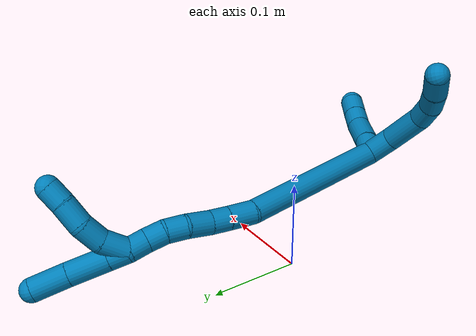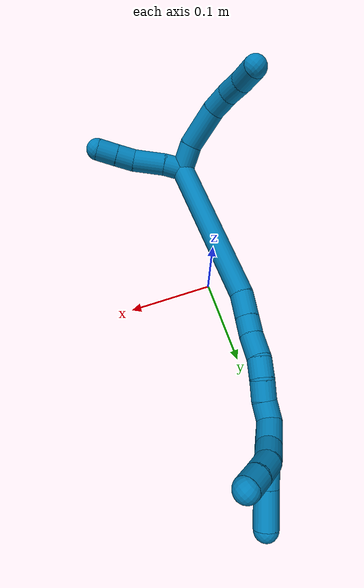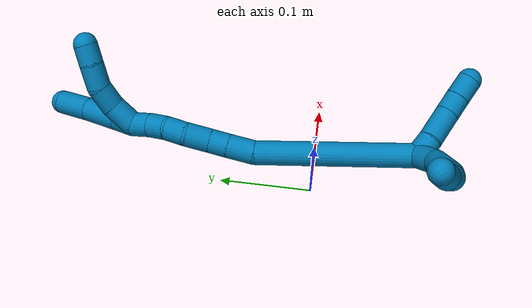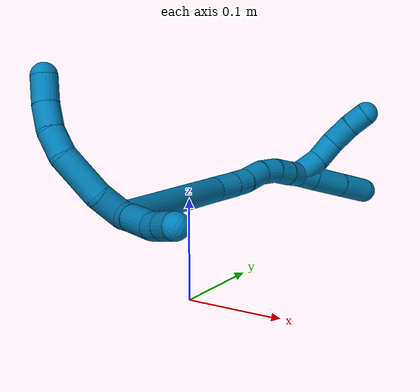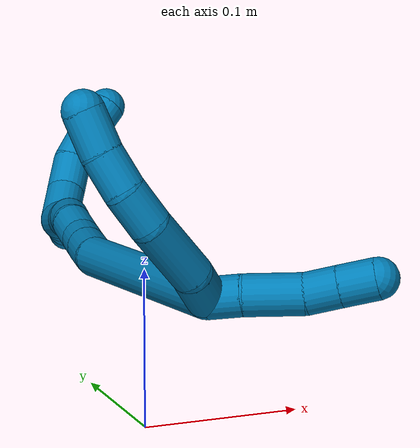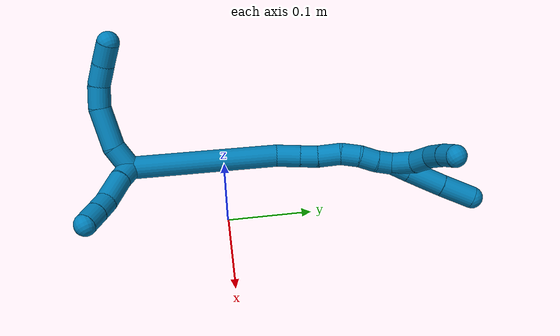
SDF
<sdf version="1.7">
 <world name="default">
  <model name="9">
   <static>0</static>
   <link name="9">
    <collision name="collision-cylinder-e_1_2_8">
     <pose>-0.004262 -0.004752 -0.013216 2.79639 -0.294632 -1.41035</pose>
     <geometry><cylinder><radius>0.0125</radius><length>0.029353</length></cylinder></geometry>
     <surface>
      <friction><ode><mu>1.16</mu><mu2>1.16</mu2><slip1>0</slip1><slip2>0</slip2></ode></friction>
      <contact><ode><kp>1e+06</kp><kd>1</kd><max_vel>0</max_vel><min_depth>0.001</min_depth></ode></contact>
     </surface>
    </collision>
    <visual name="visual-cylinder-e_1_2_8">
     <pose>-0.004262 -0.004752 -0.013216 2.79639 -0.294632 -1.41035</pose>
     <geometry><cylinder><radius>0.0125</radius><length>0.029353</length></cylinder></geometry>
     <material><ambient>0 0.490196 0.709804 1</ambient></material>
    </visual>
    <collision name="collision-cylinder-e_2_8_9">
     <pose>-0.017423 -0.009706 -0.047532 3.13203 -0.399073 -3.09433</pose>
     <geometry><cylinder><radius>0.0125</radius><length>0.045803</length></cylinder></geometry>
     <surface>
      <friction><ode><mu>1.16</mu><mu2>1.16</mu2><slip1>0</slip1><slip2>0</slip2></ode></friction>
      <contact><ode><kp>1e+06</kp><kd>1</kd><max_vel>0</max_vel><min_depth>0.001</min_depth></ode></contact>
     </surface>
    </collision>
    <visual name="visual-cylinder-e_2_8_9">
     <pose>-0.017423 -0.009706 -0.047532 3.13203 -0.399073 -3.09433</pose>
     <geometry><cylinder><radius>0.0125</radius><length>0.045803</length></cylinder></geometry>
     <material><ambient>0 0.490196 0.709804 1</ambient></material>
    </visual>
    <collision name="collision-cylinder-e_3_9_10">
     <pose>-0.033283 -0.006866 -0.078515 -2.84291 -0.592597 2.22575</pose>
     <geometry><cylinder><radius>0.0125</radius><length>0.024928</length></cylinder></geometry>
     <surface>
      <friction><ode><mu>1.16</mu><mu2>1.16</mu2><slip1>0</slip1><slip2>0</slip2></ode></friction>
      <contact><ode><kp>1e+06</kp><kd>1</kd><max_vel>0</max_vel><min_depth>0.001</min_depth></ode></contact>
     </surface>
    </collision>
    <visual name="visual-cylinder-e_3_9_10">
     <pose>-0.033283 -0.006866 -0.078515 -2.84291 -0.592597 2.22575</pose>
     <geometry><cylinder><radius>0.0125</radius><length>0.024928</length></cylinder></geometry>
     <material><ambient>0 0.490196 0.709804 1</ambient></material>
    </visual>
    <collision name="collision-cylinder-e_4_10_11">
     <pose>-0.048531 0.000829 -0.09582 -2.58178 -0.757571 1.8906</pose>
     <geometry><cylinder><radius>0.0125</radius><length>0.02412</length></cylinder></geometry>
     <surface>
      <friction><ode><mu>1.16</mu><mu2>1.16</mu2><slip1>0</slip1><slip2>0</slip2></ode></friction>
      <contact><ode><kp>1e+06</kp><kd>1</kd><max_vel>0</max_vel><min_depth>0.001</min_depth></ode></contact>
     </surface>
    </collision>
    <visual name="visual-cylinder-e_4_10_11">
     <pose>-0.048531 0.000829 -0.09582 -2.58178 -0.757571 1.8906</pose>
     <geometry><cylinder><radius>0.0125</radius><length>0.02412</length></cylinder></geometry>
     <material><ambient>0 0.490196 0.709804 1</ambient></material>
    </visual>
    <collision name="collision-cylinder-e_5_11_6">
     <pose>-0.066956 0.009862 -0.109907 -2.56006 -0.904272 2.03721</pose>
     <geometry><cylinder><radius>0.0125</radius><length>0.025795</length></cylinder></geometry>
     <surface>
      <friction><ode><mu>1.16</mu><mu2>1.16</mu2><slip1>0</slip1><slip2>0</slip2></ode></friction>
      <contact><ode><kp>1e+06</kp><kd>1</kd><max_vel>0</max_vel><min_depth>0.001</min_depth></ode></contact>
     </surface>
    </collision>
    <visual name="visual-cylinder-e_5_11_6">
     <pose>-0.066956 0.009862 -0.109907 -2.56006 -0.904272 2.03721</pose>
     <geometry><cylinder><radius>0.0125</radius><length>0.025795</length></cylinder></geometry>
     <material><ambient>0 0.490196 0.709804 1</ambient></material>
    </visual>
    <collision name="collision-cylinder-e_1_2_12">
     <pose>-0.003061 -0.008826 0.00501 1.05453 -0.292889 -0.171344</pose>
     <geometry><cylinder><radius>0.0125</radius><length>0.021201</length></cylinder></geometry>
     <surface>
      <friction><ode><mu>1.16</mu><mu2>1.16</mu2><slip1>0</slip1><slip2>0</slip2></ode></friction>
      <contact><ode><kp>1e+06</kp><kd>1</kd><max_vel>0</max_vel><min_depth>0.001</min_depth></ode></contact>
     </surface>
    </collision>
    <visual name="visual-cylinder-e_1_2_12">
     <pose>-0.003061 -0.008826 0.00501 1.05453 -0.292889 -0.171344</pose>
     <geometry><cylinder><radius>0.0125</radius><length>0.021201</length></cylinder></geometry>
     <material><ambient>0 0.490196 0.709804 1</ambient></material>
    </visual>
    <collision name="collision-cylinder-e_2_12_13">
     <pose>-0.010484 -0.031495 0.020463 0.924479 -0.246515 -0.123293</pose>
     <geometry><cylinder><radius>0.0125</radius><length>0.035761</length></cylinder></geometry>
     <surface>
      <friction><ode><mu>1.16</mu><mu2>1.16</mu2><slip1>0</slip1><slip2>0</slip2></ode></friction>
      <contact><ode><kp>1e+06</kp><kd>1</kd><max_vel>0</max_vel><min_depth>0.001</min_depth></ode></contact>
     </surface>
    </collision>
    <visual name="visual-cylinder-e_2_12_13">
     <pose>-0.010484 -0.031495 0.020463 0.924479 -0.246515 -0.123293</pose>
     <geometry><cylinder><radius>0.0125</radius><length>0.035761</length></cylinder></geometry>
     <material><ambient>0 0.490196 0.709804 1</ambient></material>
    </visual>
    <collision name="collision-cylinder-e_3_13_14">
     <pose>-0.019071 -0.053425 0.035613 1.04367 -0.423952 -0.246239</pose>
     <geometry><cylinder><radius>0.0125</radius><length>0.020533</length></cylinder></geometry>
     <surface>
      <friction><ode><mu>1.16</mu><mu2>1.16</mu2><slip1>0</slip1><slip2>0</slip2></ode></friction>
      <contact><ode><kp>1e+06</kp><kd>1</kd><max_vel>0</max_vel><min_depth>0.001</min_depth></ode></contact>
     </surface>
    </collision>
    <visual name="visual-cylinder-e_3_13_14">
     <pose>-0.019071 -0.053425 0.035613 1.04367 -0.423952 -0.246239</pose>
     <geometry><cylinder><radius>0.0125</radius><length>0.020533</length></cylinder></geometry>
     <material><ambient>0 0.490196 0.709804 1</ambient></material>
    </visual>
    <collision name="collision-cylinder-e_4_14_5">
     <pose>-0.027804 -0.070515 0.045345 1.06177 -0.412357 -0.244363</pose>
     <geometry><cylinder><radius>0.0125</radius><length>0.022505</length></cylinder></geometry>
     <surface>
      <friction><ode><mu>1.16</mu><mu2>1.16</mu2><slip1>0</slip1><slip2>0</slip2></ode></friction>
      <contact><ode><kp>1e+06</kp><kd>1</kd><max_vel>0</max_vel><min_depth>0.001</min_depth></ode></contact>
     </surface>
    </collision>
    <visual name="visual-cylinder-e_4_14_5">
     <pose>-0.027804 -0.070515 0.045345 1.06177 -0.412357 -0.244363</pose>
     <geometry><cylinder><radius>0.0125</radius><length>0.022505</length></cylinder></geometry>
     <material><ambient>0 0.490196 0.709804 1</ambient></material>
    </visual>
    <collision name="collision-cylinder-e_1_2_15">
     <pose>-0.011987 0.076904 0.026761 -1.23592 -0.146157 0.103985</pose>
     <geometry><cylinder><radius>0.0125</radius><length>0.164609</length></cylinder></geometry>
     <surface>
      <friction><ode><mu>1.16</mu><mu2>1.16</mu2><slip1>0</slip1><slip2>0</slip2></ode></friction>
      <contact><ode><kp>1e+06</kp><kd>1</kd><max_vel>0</max_vel><min_depth>0.001</min_depth></ode></contact>
     </surface>
    </collision>
    <visual name="visual-cylinder-e_1_2_15">
     <pose>-0.011987 0.076904 0.026761 -1.23592 -0.146157 0.103985</pose>
     <geometry><cylinder><radius>0.0125</radius><length>0.164609</length></cylinder></geometry>
     <material><ambient>0 0.490196 0.709804 1</ambient></material>
    </visual>
    <collision name="collision-cylinder-e_2_15_16">
     <pose>-0.02802 0.165324 0.060151 -1.04852 -0.295631 0.171776</pose>
     <geometry><cylinder><radius>0.0125</radius><length>0.027781</length></cylinder></geometry>
     <surface>
      <friction><ode><mu>1.16</mu><mu2>1.16</mu2><slip1>0</slip1><slip2>0</slip2></ode></friction>
      <contact><ode><kp>1e+06</kp><kd>1</kd><max_vel>0</max_vel><min_depth>0.001</min_depth></ode></contact>
     </surface>
    </collision>
    <visual name="visual-cylinder-e_2_15_16">
     <pose>-0.02802 0.165324 0.060151 -1.04852 -0.295631 0.171776</pose>
     <geometry><cylinder><radius>0.0125</radius><length>0.027781</length></cylinder></geometry>
     <material><ambient>0 0.490196 0.709804 1</ambient></material>
    </visual>
    <collision name="collision-cylinder-e_3_16_17">
     <pose>-0.035223 0.185111 0.071521 -1.05034 -0.319664 0.186281</pose>
     <geometry><cylinder><radius>0.0125</radius><length>0.020085</length></cylinder></geometry>
     <surface>
      <friction><ode><mu>1.16</mu><mu2>1.16</mu2><slip1>0</slip1><slip2>0</slip2></ode></friction>
      <contact><ode><kp>1e+06</kp><kd>1</kd><max_vel>0</max_vel><min_depth>0.001</min_depth></ode></contact>
     </surface>
    </collision>
    <visual name="visual-cylinder-e_3_16_17">
     <pose>-0.035223 0.185111 0.071521 -1.05034 -0.319664 0.186281</pose>
     <geometry><cylinder><radius>0.0125</radius><length>0.020085</length></cylinder></geometry>
     <material><ambient>0 0.490196 0.709804 1</ambient></material>
    </visual>
    <collision name="collision-cylinder-e_4_17_18">
     <pose>-0.043585 0.20434 0.080944 -1.16692 -0.411943 0.274118</pose>
     <geometry><cylinder><radius>0.0125</radius><length>0.026007</length></cylinder></geometry>
     <surface>
      <friction><ode><mu>1.16</mu><mu2>1.16</mu2><slip1>0</slip1><slip2>0</slip2></ode></friction>
      <contact><ode><kp>1e+06</kp><kd>1</kd><max_vel>0</max_vel><min_depth>0.001</min_depth></ode></contact>
     </surface>
    </collision>
    <visual name="visual-cylinder-e_4_17_18">
     <pose>-0.043585 0.20434 0.080944 -1.16692 -0.411943 0.274118</pose>
     <geometry><cylinder><radius>0.0125</radius><length>0.026007</length></cylinder></geometry>
     <material><ambient>0 0.490196 0.709804 1</ambient></material>
    </visual>
    <collision name="collision-cylinder-e_5_18_19">
     <pose>-0.051671 0.223634 0.091619 -0.947594 -0.27345 0.140859</pose>
     <geometry><cylinder><radius>0.0125</radius><length>0.021327</length></cylinder></geometry>
     <surface>
      <friction><ode><mu>1.16</mu><mu2>1.16</mu2><slip1>0</slip1><slip2>0</slip2></ode></friction>
      <contact><ode><kp>1e+06</kp><kd>1</kd><max_vel>0</max_vel><min_depth>0.001</min_depth></ode></contact>
     </surface>
    </collision>
    <visual name="visual-cylinder-e_5_18_19">
     <pose>-0.051671 0.223634 0.091619 -0.947594 -0.27345 0.140859</pose>
     <geometry><cylinder><radius>0.0125</radius><length>0.021327</length></cylinder></geometry>
     <material><ambient>0 0.490196 0.709804 1</ambient></material>
    </visual>
    <collision name="collision-cylinder-e_6_19_20">
     <pose>-0.05491 0.239643 0.104049 -0.872756 -0.03582 0.016707</pose>
     <geometry><cylinder><radius>0.0125</radius><length>0.020043</length></cylinder></geometry>
     <surface>
      <friction><ode><mu>1.16</mu><mu2>1.16</mu2><slip1>0</slip1><slip2>0</slip2></ode></friction>
      <contact><ode><kp>1e+06</kp><kd>1</kd><max_vel>0</max_vel><min_depth>0.001</min_depth></ode></contact>
     </surface>
    </collision>
    <visual name="visual-cylinder-e_6_19_20">
     <pose>-0.05491 0.239643 0.104049 -0.872756 -0.03582 0.016707</pose>
     <geometry><cylinder><radius>0.0125</radius><length>0.020043</length></cylinder></geometry>
     <material><ambient>0 0.490196 0.709804 1</ambient></material>
    </visual>
    <collision name="collision-cylinder-e_7_20_1">
     <pose>-0.055592 0.255996 0.11559 -1.03919 -0.032114 0.018371</pose>
     <geometry><cylinder><radius>0.0125</radius><length>0.020149</length></cylinder></geometry>
     <surface>
      <friction><ode><mu>1.16</mu><mu2>1.16</mu2><slip1>0</slip1><slip2>0</slip2></ode></friction>
      <contact><ode><kp>1e+06</kp><kd>1</kd><max_vel>0</max_vel><min_depth>0.001</min_depth></ode></contact>
     </surface>
    </collision>
    <visual name="visual-cylinder-e_7_20_1">
     <pose>-0.055592 0.255996 0.11559 -1.03919 -0.032114 0.018371</pose>
     <geometry><cylinder><radius>0.0125</radius><length>0.020149</length></cylinder></geometry>
     <material><ambient>0 0.490196 0.709804 1</ambient></material>
    </visual>
    <collision name="collision-cylinder-e_1_1_21">
     <pose>-0.06645 0.271754 0.126839 -0.855866 -0.843618 0.403787</pose>
     <geometry><cylinder><radius>0.0125</radius><length>0.028202</length></cylinder></geometry>
     <surface>
      <friction><ode><mu>1.16</mu><mu2>1.16</mu2><slip1>0</slip1><slip2>0</slip2></ode></friction>
      <contact><ode><kp>1e+06</kp><kd>1</kd><max_vel>0</max_vel><min_depth>0.001</min_depth></ode></contact>
     </surface>
    </collision>
    <visual name="visual-cylinder-e_1_1_21">
     <pose>-0.06645 0.271754 0.126839 -0.855866 -0.843618 0.403787</pose>
     <geometry><cylinder><radius>0.0125</radius><length>0.028202</length></cylinder></geometry>
     <material><ambient>0 0.490196 0.709804 1</ambient></material>
    </visual>
    <collision name="collision-cylinder-e_2_21_22">
     <pose>-0.088546 0.282487 0.135917 -0.89459 -1.18576 0.625219</pose>
     <geometry><cylinder><radius>0.0125</radius><length>0.024951</length></cylinder></geometry>
     <surface>
      <friction><ode><mu>1.16</mu><mu2>1.16</mu2><slip1>0</slip1><slip2>0</slip2></ode></friction>
      <contact><ode><kp>1e+06</kp><kd>1</kd><max_vel>0</max_vel><min_depth>0.001</min_depth></ode></contact>
     </surface>
    </collision>
    <visual name="visual-cylinder-e_2_21_22">
     <pose>-0.088546 0.282487 0.135917 -0.89459 -1.18576 0.625219</pose>
     <geometry><cylinder><radius>0.0125</radius><length>0.024951</length></cylinder></geometry>
     <material><ambient>0 0.490196 0.709804 1</ambient></material>
    </visual>
    <collision name="collision-cylinder-e_3_22_23">
     <pose>-0.112361 0.286066 0.143235 0.017227 -1.22704 -0.012131</pose>
     <geometry><cylinder><radius>0.0125</radius><length>0.026028</length></cylinder></geometry>
     <surface>
      <friction><ode><mu>1.16</mu><mu2>1.16</mu2><slip1>0</slip1><slip2>0</slip2></ode></friction>
      <contact><ode><kp>1e+06</kp><kd>1</kd><max_vel>0</max_vel><min_depth>0.001</min_depth></ode></contact>
     </surface>
    </collision>
    <visual name="visual-cylinder-e_3_22_23">
     <pose>-0.112361 0.286066 0.143235 0.017227 -1.22704 -0.012131</pose>
     <geometry><cylinder><radius>0.0125</radius><length>0.026028</length></cylinder></geometry>
     <material><ambient>0 0.490196 0.709804 1</ambient></material>
    </visual>
    <collision name="collision-cylinder-e_4_23_4">
     <pose>-0.133962 0.285843 0.152195 0.032213 -1.11547 -0.020096</pose>
     <geometry><cylinder><radius>0.0125</radius><length>0.020819</length></cylinder></geometry>
     <surface>
      <friction><ode><mu>1.16</mu><mu2>1.16</mu2><slip1>0</slip1><slip2>0</slip2></ode></friction>
      <contact><ode><kp>1e+06</kp><kd>1</kd><max_vel>0</max_vel><min_depth>0.001</min_depth></ode></contact>
     </surface>
    </collision>
    <visual name="visual-cylinder-e_4_23_4">
     <pose>-0.133962 0.285843 0.152195 0.032213 -1.11547 -0.020096</pose>
     <geometry><cylinder><radius>0.0125</radius><length>0.020819</length></cylinder></geometry>
     <material><ambient>0 0.490196 0.709804 1</ambient></material>
    </visual>
    <collision name="collision-cylinder-e_1_1_24">
     <pose>-0.056401 0.271378 0.128442 -0.713204 -0.047324 0.017632</pose>
     <geometry><cylinder><radius>0.0125</radius><length>0.020512</length></cylinder></geometry>
     <surface>
      <friction><ode><mu>1.16</mu><mu2>1.16</mu2><slip1>0</slip1><slip2>0</slip2></ode></friction>
      <contact><ode><kp>1e+06</kp><kd>1</kd><max_vel>0</max_vel><min_depth>0.001</min_depth></ode></contact>
     </surface>
    </collision>
    <visual name="visual-cylinder-e_1_1_24">
     <pose>-0.056401 0.271378 0.128442 -0.713204 -0.047324 0.017632</pose>
     <geometry><cylinder><radius>0.0125</radius><length>0.020512</length></cylinder></geometry>
     <material><ambient>0 0.490196 0.709804 1</ambient></material>
    </visual>
    <collision name="collision-cylinder-e_2_24_25">
     <pose>-0.058063 0.292022 0.151444 -0.740471 -0.056912 0.022094</pose>
     <geometry><cylinder><radius>0.0125</radius><length>0.041398</length></cylinder></geometry>
     <surface>
      <friction><ode><mu>1.16</mu><mu2>1.16</mu2><slip1>0</slip1><slip2>0</slip2></ode></friction>
      <contact><ode><kp>1e+06</kp><kd>1</kd><max_vel>0</max_vel><min_depth>0.001</min_depth></ode></contact>
     </surface>
    </collision>
    <visual name="visual-cylinder-e_2_24_25">
     <pose>-0.058063 0.292022 0.151444 -0.740471 -0.056912 0.022094</pose>
     <geometry><cylinder><radius>0.0125</radius><length>0.041398</length></cylinder></geometry>
     <material><ambient>0 0.490196 0.709804 1</ambient></material>
    </visual>
    <collision name="collision-cylinder-e_3_25_3">
     <pose>-0.060078 0.319315 0.180254 -0.777773 -0.043998 0.018031</pose>
     <geometry><cylinder><radius>0.0125</radius><length>0.03809</length></cylinder></geometry>
     <surface>
      <friction><ode><mu>1.16</mu><mu2>1.16</mu2><slip1>0</slip1><slip2>0</slip2></ode></friction>
      <contact><ode><kp>1e+06</kp><kd>1</kd><max_vel>0</max_vel><min_depth>0.001</min_depth></ode></contact>
     </surface>
    </collision>
    <visual name="visual-cylinder-e_3_25_3">
     <pose>-0.060078 0.319315 0.180254 -0.777773 -0.043998 0.018031</pose>
     <geometry><cylinder><radius>0.0125</radius><length>0.03809</length></cylinder></geometry>
     <material><ambient>0 0.490196 0.709804 1</ambient></material>
    </visual>
    <collision name="collision-sphere-3">
     <pose>-0.060916 0.332665 0.19381 0 -0 0</pose>
     <geometry><sphere><radius>0.0125</radius></sphere></geometry>
     <surface>
      <friction><ode><mu>1.16</mu><mu2>1.16</mu2><slip1>0</slip1><slip2>0</slip2></ode></friction>
      <contact><ode><kp>1e+06</kp><kd>1</kd><max_vel>0</max_vel><min_depth>0.001</min_depth></ode></contact>
     </surface>
    </collision>
    <visual name="visual-sphere-3">
     <pose>-0.060916 0.332665 0.19381 0 -0 0</pose>
     <geometry><sphere><radius>0.0125</radius></sphere></geometry>
     <material><ambient>0 0.490196 0.709804 1</ambient></material>
    </visual>
    <collision name="collision-sphere-25">
     <pose>-0.059241 0.305964 0.166698 0 -0 0</pose>
     <geometry><sphere><radius>0.0125</radius></sphere></geometry>
     <surface>
      <friction><ode><mu>1.16</mu><mu2>1.16</mu2><slip1>0</slip1><slip2>0</slip2></ode></friction>
      <contact><ode><kp>1e+06</kp><kd>1</kd><max_vel>0</max_vel><min_depth>0.001</min_depth></ode></contact>
     </surface>
    </collision>
    <visual name="visual-sphere-25">
     <pose>-0.059241 0.305964 0.166698 0 -0 0</pose>
     <geometry><sphere><radius>0.0125</radius></sphere></geometry>
     <material><ambient>0 0.490196 0.709804 1</ambient></material>
    </visual>
    <collision name="collision-sphere-24">
     <pose>-0.056886 0.27808 0.136189 0 -0 0</pose>
     <geometry><sphere><radius>0.0125</radius></sphere></geometry>
     <surface>
      <friction><ode><mu>1.16</mu><mu2>1.16</mu2><slip1>0</slip1><slip2>0</slip2></ode></friction>
      <contact><ode><kp>1e+06</kp><kd>1</kd><max_vel>0</max_vel><min_depth>0.001</min_depth></ode></contact>
     </surface>
    </collision>
    <visual name="visual-sphere-24">
     <pose>-0.056886 0.27808 0.136189 0 -0 0</pose>
     <geometry><sphere><radius>0.0125</radius></sphere></geometry>
     <material><ambient>0 0.490196 0.709804 1</ambient></material>
    </visual>
    <collision name="collision-sphere-4">
     <pose>-0.143311 0.285695 0.156771 0 -0 0</pose>
     <geometry><sphere><radius>0.0125</radius></sphere></geometry>
     <surface>
      <friction><ode><mu>1.16</mu><mu2>1.16</mu2><slip1>0</slip1><slip2>0</slip2></ode></friction>
      <contact><ode><kp>1e+06</kp><kd>1</kd><max_vel>0</max_vel><min_depth>0.001</min_depth></ode></contact>
     </surface>
    </collision>
    <visual name="visual-sphere-4">
     <pose>-0.143311 0.285695 0.156771 0 -0 0</pose>
     <geometry><sphere><radius>0.0125</radius></sphere></geometry>
     <material><ambient>0 0.490196 0.709804 1</ambient></material>
    </visual>
    <collision name="collision-sphere-23">
     <pose>-0.124613 0.28599 0.14762 0 -0 0</pose>
     <geometry><sphere><radius>0.0125</radius></sphere></geometry>
     <surface>
      <friction><ode><mu>1.16</mu><mu2>1.16</mu2><slip1>0</slip1><slip2>0</slip2></ode></friction>
      <contact><ode><kp>1e+06</kp><kd>1</kd><max_vel>0</max_vel><min_depth>0.001</min_depth></ode></contact>
     </surface>
    </collision>
    <visual name="visual-sphere-23">
     <pose>-0.124613 0.28599 0.14762 0 -0 0</pose>
     <geometry><sphere><radius>0.0125</radius></sphere></geometry>
     <material><ambient>0 0.490196 0.709804 1</ambient></material>
    </visual>
    <collision name="collision-sphere-22">
     <pose>-0.100108 0.286141 0.138849 0 -0 0</pose>
     <geometry><sphere><radius>0.0125</radius></sphere></geometry>
     <surface>
      <friction><ode><mu>1.16</mu><mu2>1.16</mu2><slip1>0</slip1><slip2>0</slip2></ode></friction>
      <contact><ode><kp>1e+06</kp><kd>1</kd><max_vel>0</max_vel><min_depth>0.001</min_depth></ode></contact>
     </surface>
    </collision>
    <visual name="visual-sphere-22">
     <pose>-0.100108 0.286141 0.138849 0 -0 0</pose>
     <geometry><sphere><radius>0.0125</radius></sphere></geometry>
     <material><ambient>0 0.490196 0.709804 1</ambient></material>
    </visual>
    <collision name="collision-sphere-21">
     <pose>-0.076984 0.278832 0.132984 0 -0 0</pose>
     <geometry><sphere><radius>0.0125</radius></sphere></geometry>
     <surface>
      <friction><ode><mu>1.16</mu><mu2>1.16</mu2><slip1>0</slip1><slip2>0</slip2></ode></friction>
      <contact><ode><kp>1e+06</kp><kd>1</kd><max_vel>0</max_vel><min_depth>0.001</min_depth></ode></contact>
     </surface>
    </collision>
    <visual name="visual-sphere-21">
     <pose>-0.076984 0.278832 0.132984 0 -0 0</pose>
     <geometry><sphere><radius>0.0125</radius></sphere></geometry>
     <material><ambient>0 0.490196 0.709804 1</ambient></material>
    </visual>
    <collision name="collision-sphere-1">
     <pose>-0.055916 0.264675 0.120694 0 -0 0</pose>
     <geometry><sphere><radius>0.0125</radius></sphere></geometry>
     <surface>
      <friction><ode><mu>1.16</mu><mu2>1.16</mu2><slip1>0</slip1><slip2>0</slip2></ode></friction>
      <contact><ode><kp>1e+06</kp><kd>1</kd><max_vel>0</max_vel><min_depth>0.001</min_depth></ode></contact>
     </surface>
    </collision>
    <visual name="visual-sphere-1">
     <pose>-0.055916 0.264675 0.120694 0 -0 0</pose>
     <geometry><sphere><radius>0.0125</radius></sphere></geometry>
     <material><ambient>0 0.490196 0.709804 1</ambient></material>
    </visual>
    <collision name="collision-sphere-6">
     <pose>-0.077093 0.014242 -0.116571 0 -0 0</pose>
     <geometry><sphere><radius>0.0125</radius></sphere></geometry>
     <surface>
      <friction><ode><mu>1.16</mu><mu2>1.16</mu2><slip1>0</slip1><slip2>0</slip2></ode></friction>
      <contact><ode><kp>1e+06</kp><kd>1</kd><max_vel>0</max_vel><min_depth>0.001</min_depth></ode></contact>
     </surface>
    </collision>
    <visual name="visual-sphere-6">
     <pose>-0.077093 0.014242 -0.116571 0 -0 0</pose>
     <geometry><sphere><radius>0.0125</radius></sphere></geometry>
     <material><ambient>0 0.490196 0.709804 1</ambient></material>
    </visual>
    <collision name="collision-sphere-11">
     <pose>-0.056818 0.005482 -0.103244 0 -0 0</pose>
     <geometry><sphere><radius>0.0125</radius></sphere></geometry>
     <surface>
      <friction><ode><mu>1.16</mu><mu2>1.16</mu2><slip1>0</slip1><slip2>0</slip2></ode></friction>
      <contact><ode><kp>1e+06</kp><kd>1</kd><max_vel>0</max_vel><min_depth>0.001</min_depth></ode></contact>
     </surface>
    </collision>
    <visual name="visual-sphere-11">
     <pose>-0.056818 0.005482 -0.103244 0 -0 0</pose>
     <geometry><sphere><radius>0.0125</radius></sphere></geometry>
     <material><ambient>0 0.490196 0.709804 1</ambient></material>
    </visual>
    <collision name="collision-sphere-10">
     <pose>-0.040244 -0.003823 -0.088396 0 -0 0</pose>
     <geometry><sphere><radius>0.0125</radius></sphere></geometry>
     <surface>
      <friction><ode><mu>1.16</mu><mu2>1.16</mu2><slip1>0</slip1><slip2>0</slip2></ode></friction>
      <contact><ode><kp>1e+06</kp><kd>1</kd><max_vel>0</max_vel><min_depth>0.001</min_depth></ode></contact>
     </surface>
    </collision>
    <visual name="visual-sphere-10">
     <pose>-0.040244 -0.003823 -0.088396 0 -0 0</pose>
     <geometry><sphere><radius>0.0125</radius></sphere></geometry>
     <material><ambient>0 0.490196 0.709804 1</ambient></material>
    </visual>
    <collision name="collision-sphere-9">
     <pose>-0.026321 -0.009908 -0.068633 0 -0 0</pose>
     <geometry><sphere><radius>0.0125</radius></sphere></geometry>
     <surface>
      <friction><ode><mu>1.16</mu><mu2>1.16</mu2><slip1>0</slip1><slip2>0</slip2></ode></friction>
      <contact><ode><kp>1e+06</kp><kd>1</kd><max_vel>0</max_vel><min_depth>0.001</min_depth></ode></contact>
     </surface>
    </collision>
    <visual name="visual-sphere-9">
     <pose>-0.026321 -0.009908 -0.068633 0 -0 0</pose>
     <geometry><sphere><radius>0.0125</radius></sphere></geometry>
     <material><ambient>0 0.490196 0.709804 1</ambient></material>
    </visual>
    <collision name="collision-sphere-2">
     <geometry><sphere><radius>0.0125</radius></sphere></geometry>
     <surface>
      <friction><ode><mu>1.16</mu><mu2>1.16</mu2><slip1>0</slip1><slip2>0</slip2></ode></friction>
      <contact><ode><kp>1e+06</kp><kd>1</kd><max_vel>0</max_vel><min_depth>0.001</min_depth></ode></contact>
     </surface>
    </collision>
    <visual name="visual-sphere-2">
     <geometry><sphere><radius>0.0125</radius></sphere></geometry>
     <material><ambient>0 0.490196 0.709804 1</ambient></material>
    </visual>
    <collision name="collision-sphere-19">
     <pose>-0.054551 0.231971 0.097612 0 -0 0</pose>
     <geometry><sphere><radius>0.0125</radius></sphere></geometry>
     <surface>
      <friction><ode><mu>1.16</mu><mu2>1.16</mu2><slip1>0</slip1><slip2>0</slip2></ode></friction>
      <contact><ode><kp>1e+06</kp><kd>1</kd><max_vel>0</max_vel><min_depth>0.001</min_depth></ode></contact>
     </surface>
    </collision>
    <visual name="visual-sphere-19">
     <pose>-0.054551 0.231971 0.097612 0 -0 0</pose>
     <geometry><sphere><radius>0.0125</radius></sphere></geometry>
     <material><ambient>0 0.490196 0.709804 1</ambient></material>
    </visual>
    <collision name="collision-sphere-8">
     <pose>-0.008524 -0.009505 -0.026431 0 -0 0</pose>
     <geometry><sphere><radius>0.0125</radius></sphere></geometry>
     <surface>
      <friction><ode><mu>1.16</mu><mu2>1.16</mu2><slip1>0</slip1><slip2>0</slip2></ode></friction>
      <contact><ode><kp>1e+06</kp><kd>1</kd><max_vel>0</max_vel><min_depth>0.001</min_depth></ode></contact>
     </surface>
    </collision>
    <visual name="visual-sphere-8">
     <pose>-0.008524 -0.009505 -0.026431 0 -0 0</pose>
     <geometry><sphere><radius>0.0125</radius></sphere></geometry>
     <material><ambient>0 0.490196 0.709804 1</ambient></material>
    </visual>
    <collision name="collision-sphere-12">
     <pose>-0.006121 -0.017652 0.01002 0 -0 0</pose>
     <geometry><sphere><radius>0.0125</radius></sphere></geometry>
     <surface>
      <friction><ode><mu>1.16</mu><mu2>1.16</mu2><slip1>0</slip1><slip2>0</slip2></ode></friction>
      <contact><ode><kp>1e+06</kp><kd>1</kd><max_vel>0</max_vel><min_depth>0.001</min_depth></ode></contact>
     </surface>
    </collision>
    <visual name="visual-sphere-12">
     <pose>-0.006121 -0.017652 0.01002 0 -0 0</pose>
     <geometry><sphere><radius>0.0125</radius></sphere></geometry>
     <material><ambient>0 0.490196 0.709804 1</ambient></material>
    </visual>
    <collision name="collision-sphere-13">
     <pose>-0.014848 -0.045338 0.030906 0 -0 0</pose>
     <geometry><sphere><radius>0.0125</radius></sphere></geometry>
     <surface>
      <friction><ode><mu>1.16</mu><mu2>1.16</mu2><slip1>0</slip1><slip2>0</slip2></ode></friction>
      <contact><ode><kp>1e+06</kp><kd>1</kd><max_vel>0</max_vel><min_depth>0.001</min_depth></ode></contact>
     </surface>
    </collision>
    <visual name="visual-sphere-13">
     <pose>-0.014848 -0.045338 0.030906 0 -0 0</pose>
     <geometry><sphere><radius>0.0125</radius></sphere></geometry>
     <material><ambient>0 0.490196 0.709804 1</ambient></material>
    </visual>
    <collision name="collision-sphere-14">
     <pose>-0.023294 -0.061512 0.04032 0 -0 0</pose>
     <geometry><sphere><radius>0.0125</radius></sphere></geometry>
     <surface>
      <friction><ode><mu>1.16</mu><mu2>1.16</mu2><slip1>0</slip1><slip2>0</slip2></ode></friction>
      <contact><ode><kp>1e+06</kp><kd>1</kd><max_vel>0</max_vel><min_depth>0.001</min_depth></ode></contact>
     </surface>
    </collision>
    <visual name="visual-sphere-14">
     <pose>-0.023294 -0.061512 0.04032 0 -0 0</pose>
     <geometry><sphere><radius>0.0125</radius></sphere></geometry>
     <material><ambient>0 0.490196 0.709804 1</ambient></material>
    </visual>
    <collision name="collision-sphere-5">
     <pose>-0.032314 -0.079517 0.050369 0 -0 0</pose>
     <geometry><sphere><radius>0.0125</radius></sphere></geometry>
     <surface>
      <friction><ode><mu>1.16</mu><mu2>1.16</mu2><slip1>0</slip1><slip2>0</slip2></ode></friction>
      <contact><ode><kp>1e+06</kp><kd>1</kd><max_vel>0</max_vel><min_depth>0.001</min_depth></ode></contact>
     </surface>
    </collision>
    <visual name="visual-sphere-5">
     <pose>-0.032314 -0.079517 0.050369 0 -0 0</pose>
     <geometry><sphere><radius>0.0125</radius></sphere></geometry>
     <material><ambient>0 0.490196 0.709804 1</ambient></material>
    </visual>
    <collision name="collision-sphere-15">
     <pose>-0.023973 0.153808 0.053523 0 -0 0</pose>
     <geometry><sphere><radius>0.0125</radius></sphere></geometry>
     <surface>
      <friction><ode><mu>1.16</mu><mu2>1.16</mu2><slip1>0</slip1><slip2>0</slip2></ode></friction>
      <contact><ode><kp>1e+06</kp><kd>1</kd><max_vel>0</max_vel><min_depth>0.001</min_depth></ode></contact>
     </surface>
    </collision>
    <visual name="visual-sphere-15">
     <pose>-0.023973 0.153808 0.053523 0 -0 0</pose>
     <geometry><sphere><radius>0.0125</radius></sphere></geometry>
     <material><ambient>0 0.490196 0.709804 1</ambient></material>
    </visual>
    <collision name="collision-sphere-16">
     <pose>-0.032067 0.17684 0.06678 0 -0 0</pose>
     <geometry><sphere><radius>0.0125</radius></sphere></geometry>
     <surface>
      <friction><ode><mu>1.16</mu><mu2>1.16</mu2><slip1>0</slip1><slip2>0</slip2></ode></friction>
      <contact><ode><kp>1e+06</kp><kd>1</kd><max_vel>0</max_vel><min_depth>0.001</min_depth></ode></contact>
     </surface>
    </collision>
    <visual name="visual-sphere-16">
     <pose>-0.032067 0.17684 0.06678 0 -0 0</pose>
     <geometry><sphere><radius>0.0125</radius></sphere></geometry>
     <material><ambient>0 0.490196 0.709804 1</ambient></material>
    </visual>
    <collision name="collision-sphere-17">
     <pose>-0.038379 0.193383 0.076262 0 -0 0</pose>
     <geometry><sphere><radius>0.0125</radius></sphere></geometry>
     <surface>
      <friction><ode><mu>1.16</mu><mu2>1.16</mu2><slip1>0</slip1><slip2>0</slip2></ode></friction>
      <contact><ode><kp>1e+06</kp><kd>1</kd><max_vel>0</max_vel><min_depth>0.001</min_depth></ode></contact>
     </surface>
    </collision>
    <visual name="visual-sphere-17">
     <pose>-0.038379 0.193383 0.076262 0 -0 0</pose>
     <geometry><sphere><radius>0.0125</radius></sphere></geometry>
     <material><ambient>0 0.490196 0.709804 1</ambient></material>
    </visual>
    <collision name="collision-sphere-18">
     <pose>-0.048791 0.215296 0.085627 0 -0 0</pose>
     <geometry><sphere><radius>0.0125</radius></sphere></geometry>
     <surface>
      <friction><ode><mu>1.16</mu><mu2>1.16</mu2><slip1>0</slip1><slip2>0</slip2></ode></friction>
      <contact><ode><kp>1e+06</kp><kd>1</kd><max_vel>0</max_vel><min_depth>0.001</min_depth></ode></contact>
     </surface>
    </collision>
    <visual name="visual-sphere-18">
     <pose>-0.048791 0.215296 0.085627 0 -0 0</pose>
     <geometry><sphere><radius>0.0125</radius></sphere></geometry>
     <material><ambient>0 0.490196 0.709804 1</ambient></material>
    </visual>
    <collision name="collision-sphere-20">
     <pose>-0.055269 0.247316 0.110485 0 -0 0</pose>
     <geometry><sphere><radius>0.0125</radius></sphere></geometry>
     <surface>
      <friction><ode><mu>1.16</mu><mu2>1.16</mu2><slip1>0</slip1><slip2>0</slip2></ode></friction>
      <contact><ode><kp>1e+06</kp><kd>1</kd><max_vel>0</max_vel><min_depth>0.001</min_depth></ode></contact>
     </surface>
    </collision>
    <visual name="visual-sphere-20">
     <pose>-0.055269 0.247316 0.110485 0 -0 0</pose>
     <geometry><sphere><radius>0.0125</radius></sphere></geometry>
     <material><ambient>0 0.490196 0.709804 1</ambient></material>
    </visual>
    <inertial>
     <pose>-0.039558 0.125952 0.05139 0 -0 0</pose>
     <mass>0.75</mass>
     <inertia>
      <ixx>0.000422</ixx>
      <ixy>0</ixy>
      <ixz>0</ixz>
      <iyy>0.000239</iyy>
      <iyz>0</iyz>
      <izz>-0.000276</izz>
     </inertia>
    </inertial>
   </link>
   <pose>-0.00016 -0.103668 0.108321 -2.9392 1.12983 -2.52919</pose>
  </model>
 </world>
</sdf>
